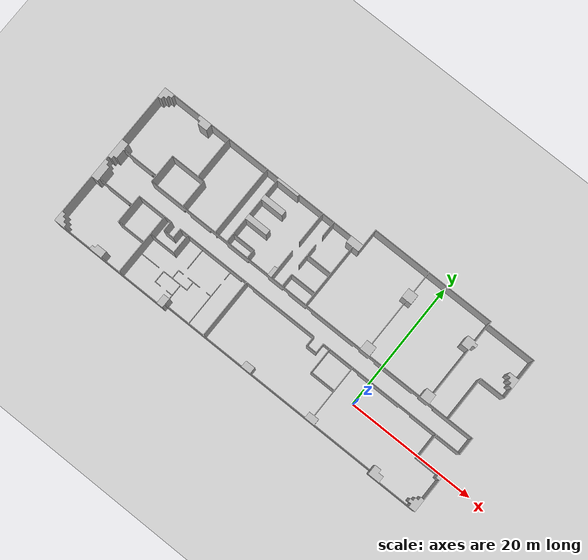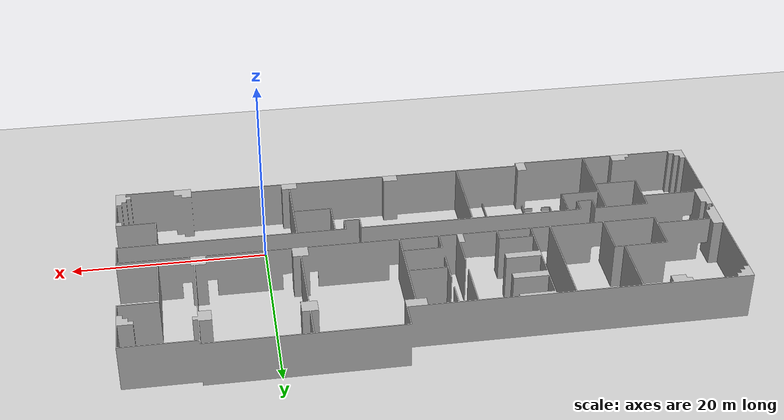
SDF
<sdf version="1.6">
 <world name="default">
  <light name="sun" type="directional">
   <pose>0 0 10 0 -0 0</pose>
   <diffuse>0.8 0.8 0.8 1</diffuse>
   <specular>0.2 0.2 0.2 1</specular>
   <attenuation>
    <range>1000</range>
    <constant>0.9</constant>
    <linear>0.01</linear>
    <quadratic>0.001</quadratic>
   </attenuation>
   <direction>-0.5 0.1 -0.9</direction>
  </light>
  <model name="ground_plane">
   <static>1</static>
   <link name="link">
    <collision name="collision">
     <geometry><plane><normal>0 0 1</normal><size>100 100</size></plane></geometry>
     <surface><friction><ode><mu>100</mu><mu2>50</mu2></ode></friction></surface>
    </collision>
    <visual name="visual">
     <cast_shadows>0</cast_shadows>
     <geometry><plane><normal>0 0 1</normal><size>100 100</size></plane></geometry>
     <material>
      <script><uri>file://media/materials/scripts/gazebo.material</uri><name>Gazebo/Grey</name></script>
     </material>
    </visual>
    <velocity_decay><linear>0</linear><angular>0</angular></velocity_decay>
   </link>
  </model>
  <physics name="default_physics" default="0" type="ode">
   <max_step_size>0.001</max_step_size>
   <real_time_factor>1</real_time_factor>
   <real_time_update_rate>1000</real_time_update_rate>
  </physics>
  <scene><ambient>0.4 0.4 0.4 1</ambient><background>0.7 0.7 0.7 1</background><shadows>1</shadows></scene>
  <spherical_coordinates>
   <surface_model>EARTH_WGS84</surface_model>
   <latitude_deg>0</latitude_deg>
   <longitude_deg>0</longitude_deg>
   <elevation>0</elevation>
   <heading_deg>0</heading_deg>
  </spherical_coordinates>
  <model name="iceira_all_v2">
   <link name="iceira_all_v2">
    <inertial>
     <pose>-0.51712 -1.0217 0.365 0 -0 0</pose>
     <mass>4047.1</mass>
     <inertia>
      <ixx>39193.3</ixx>
      <ixy>6157.57</ixy>
      <ixz>-3.10115e-12</ixz>
      <iyy>49928.6</iyy>
      <iyz>3.4948e-12</iyz>
      <izz>88762.4</izz>
     </inertia>
    </inertial>
    <collision name="iceira_all_v2_collision">
     <geometry><mesh><scale>1 1 1</scale><uri>model://meshes/iceira_all_v2.STL</uri></mesh></geometry>
    </collision>
    <visual name="iceira_all_v2_visual">
     <geometry><mesh><scale>1 1 1</scale><uri>model://meshes/iceira_all_v2.STL</uri></mesh></geometry>
    </visual>
    <velocity_decay><linear>0</linear><angular>0</angular></velocity_decay>
   </link>
   <pose>-21.2244 3.56292 0 0 -0 0</pose>
   <static>0</static>
  </model>
  <gravity>0 0 -9.8</gravity>
  <magnetic_field>6e-06 2.3e-05 -4.2e-05</magnetic_field>
  <atmosphere type="adiabatic"/>
 </world>
</sdf>
